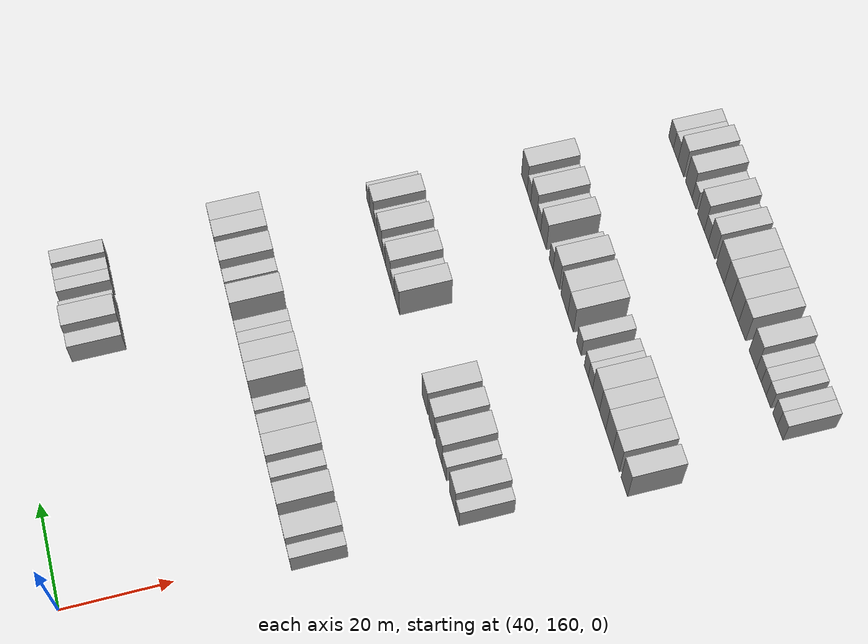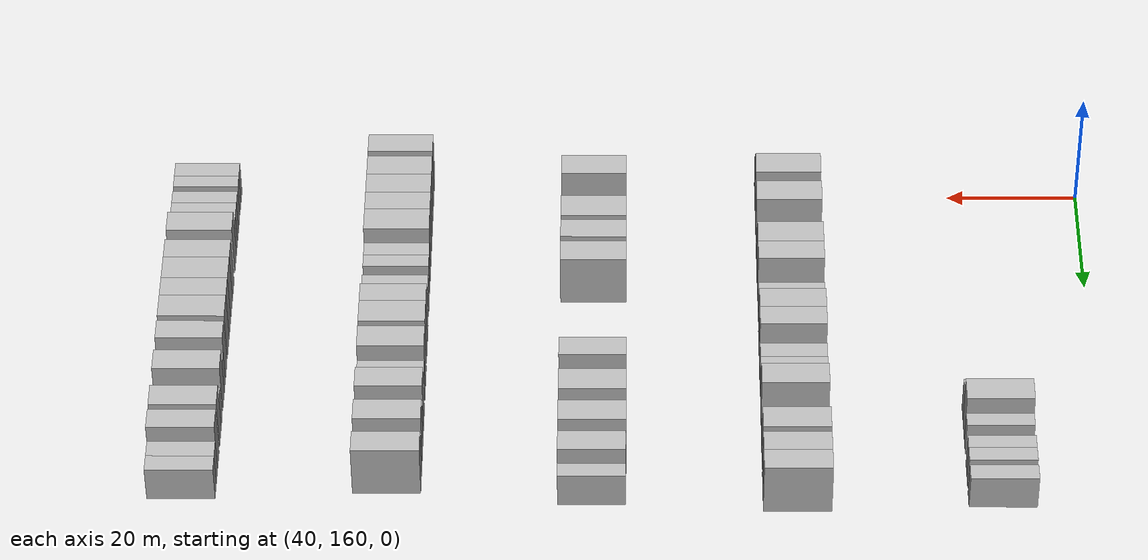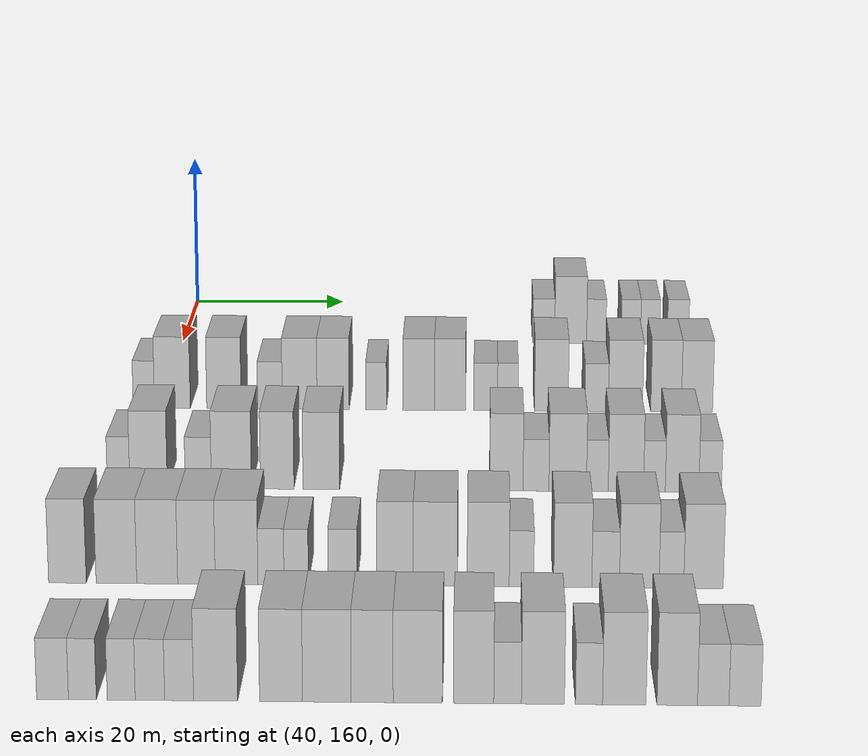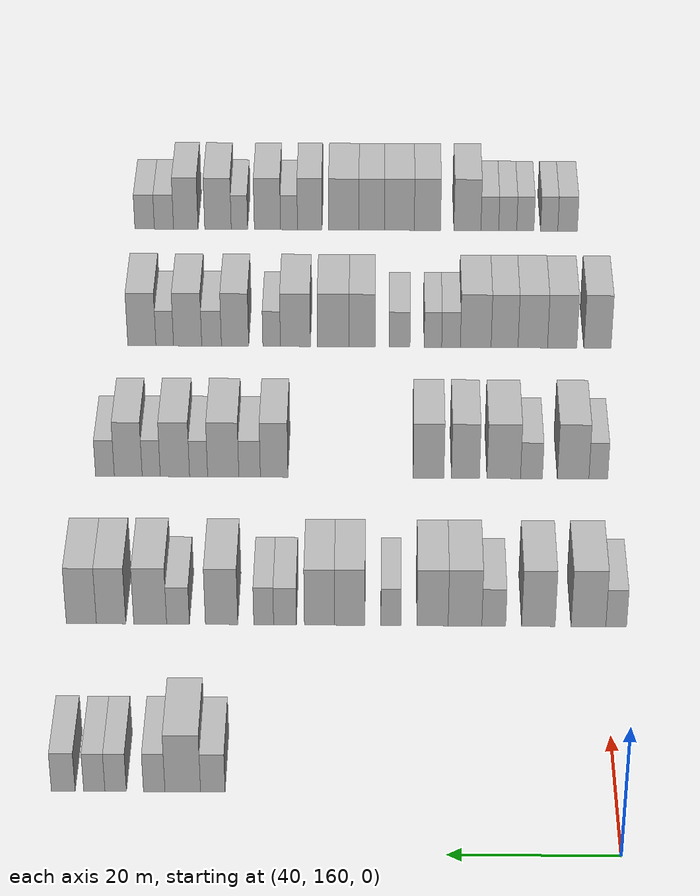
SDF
<sdf version="1.6">
 <world name="default">
  <model name="building_389">
   <static>1</static>
   <pose>55.0000 207.2633 0 0.000000 0.000000 0.000000</pose>
   <link name="link">
    <pose>0 0 3.00 0 0 0</pose>
    <collision name="collision"><geometry><box><size>10.0000 2.8844 6.0000</size></box></geometry></collision>
    <visual name="visual">
     <cast_shadows>0</cast_shadows>
     <geometry><box><size>10.0000 2.8844 6.0000</size></box></geometry>
     <material>
      <script>
       <uri>model://HANNAS_wall/materials/scripts</uri>
       <uri>model://HANNAS_wall/materials/textures</uri>
       <name>vrc/HANNAS_wall</name>
      </script>
     </material>
    </visual>
   </link>
  </model>
  <model name="building_390">
   <static>1</static>
   <pose>55.0000 210.7934 0 0.000000 0.000000 0.000000</pose>
   <link name="link">
    <pose>0 0 4.50 0 0 0</pose>
    <collision name="collision"><geometry><box><size>10.0000 4.1758 9.0000</size></box></geometry></collision>
    <visual name="visual">
     <cast_shadows>0</cast_shadows>
     <geometry><box><size>10.0000 4.1758 9.0000</size></box></geometry>
     <material>
      <script>
       <uri>model://HANNAS_wall/materials/scripts</uri>
       <uri>model://HANNAS_wall/materials/textures</uri>
       <name>vrc/HANNAS_wall</name>
      </script>
     </material>
    </visual>
   </link>
  </model>
  <model name="building_391">
   <static>1</static>
   <pose>55.0000 214.1429 0 0.000000 0.000000 0.000000</pose>
   <link name="link">
    <pose>0 0 3.00 0 0 0</pose>
    <collision name="collision"><geometry><box><size>10.0000 2.5232 6.0000</size></box></geometry></collision>
    <visual name="visual">
     <cast_shadows>0</cast_shadows>
     <geometry><box><size>10.0000 2.5232 6.0000</size></box></geometry>
     <material>
      <script>
       <uri>model://HANNAS_wall/materials/scripts</uri>
       <uri>model://HANNAS_wall/materials/textures</uri>
       <name>vrc/HANNAS_wall</name>
      </script>
     </material>
    </visual>
   </link>
  </model>
  <model name="building_392">
   <static>1</static>
   <pose>55.0000 218.6651 0 0.000000 0.000000 0.000000</pose>
   <link name="link">
    <pose>0 0 3.00 0 0 0</pose>
    <collision name="collision"><geometry><box><size>10.0000 2.5212 6.0000</size></box></geometry></collision>
    <visual name="visual">
     <cast_shadows>0</cast_shadows>
     <geometry><box><size>10.0000 2.5212 6.0000</size></box></geometry>
     <material>
      <script>
       <uri>model://HANNAS_wall/materials/scripts</uri>
       <uri>model://HANNAS_wall/materials/textures</uri>
       <name>vrc/HANNAS_wall</name>
      </script>
     </material>
    </visual>
   </link>
  </model>
  <model name="building_393">
   <static>1</static>
   <pose>55.0000 221.1750 0 0.000000 0.000000 0.000000</pose>
   <link name="link">
    <pose>0 0 3.00 0 0 0</pose>
    <collision name="collision"><geometry><box><size>10.0000 2.4988 6.0000</size></box></geometry></collision>
    <visual name="visual">
     <cast_shadows>0</cast_shadows>
     <geometry><box><size>10.0000 2.4988 6.0000</size></box></geometry>
     <material>
      <script>
       <uri>model://HANNAS_wall/materials/scripts</uri>
       <uri>model://HANNAS_wall/materials/textures</uri>
       <name>vrc/HANNAS_wall</name>
      </script>
     </material>
    </visual>
   </link>
  </model>
  <model name="building_394">
   <static>1</static>
   <pose>55.0000 224.8214 0 0.000000 0.000000 0.000000</pose>
   <link name="link">
    <pose>0 0 3.00 0 0 0</pose>
    <collision name="collision"><geometry><box><size>10.0000 2.7939 6.0000</size></box></geometry></collision>
    <visual name="visual">
     <cast_shadows>0</cast_shadows>
     <geometry><box><size>10.0000 2.7939 6.0000</size></box></geometry>
     <material>
      <script>
       <uri>model://HANNAS_wall/materials/scripts</uri>
       <uri>model://HANNAS_wall/materials/textures</uri>
       <name>vrc/HANNAS_wall</name>
      </script>
     </material>
    </visual>
   </link>
  </model>
  <model name="building_598">
   <static>1</static>
   <pose>85.0000 158.1595 0 0.000000 0.000000 0.000000</pose>
   <link name="link">
    <pose>0 0 3.00 0 0 0</pose>
    <collision name="collision"><geometry><box><size>10.0000 2.5945 6.0000</size></box></geometry></collision>
    <visual name="visual">
     <cast_shadows>0</cast_shadows>
     <geometry><box><size>10.0000 2.5945 6.0000</size></box></geometry>
     <material>
      <script>
       <uri>model://HANNAS_wall/materials/scripts</uri>
       <uri>model://HANNAS_wall/materials/textures</uri>
       <name>vrc/HANNAS_wall</name>
      </script>
     </material>
    </visual>
   </link>
  </model>
  <model name="building_599">
   <static>1</static>
   <pose>85.0000 161.6323 0 0.000000 0.000000 0.000000</pose>
   <link name="link">
    <pose>0 0 4.50 0 0 0</pose>
    <collision name="collision"><geometry><box><size>10.0000 4.3510 9.0000</size></box></geometry></collision>
    <visual name="visual">
     <cast_shadows>0</cast_shadows>
     <geometry><box><size>10.0000 4.3510 9.0000</size></box></geometry>
     <material>
      <script>
       <uri>model://HANNAS_wall/materials/scripts</uri>
       <uri>model://HANNAS_wall/materials/textures</uri>
       <name>vrc/HANNAS_wall</name>
      </script>
     </material>
    </visual>
   </link>
  </model>
  <model name="building_600">
   <static>1</static>
   <pose>85.0000 167.9012 0 0.000000 0.000000 0.000000</pose>
   <link name="link">
    <pose>0 0 4.50 0 0 0</pose>
    <collision name="collision"><geometry><box><size>10.0000 4.1868 9.0000</size></box></geometry></collision>
    <visual name="visual">
     <cast_shadows>0</cast_shadows>
     <geometry><box><size>10.0000 4.1868 9.0000</size></box></geometry>
     <material>
      <script>
       <uri>model://HANNAS_wall/materials/scripts</uri>
       <uri>model://HANNAS_wall/materials/textures</uri>
       <name>vrc/HANNAS_wall</name>
      </script>
     </material>
    </visual>
   </link>
  </model>
  <model name="building_601">
   <static>1</static>
   <pose>85.0000 173.4865 0 0.000000 0.000000 0.000000</pose>
   <link name="link">
    <pose>0 0 3.00 0 0 0</pose>
    <collision name="collision"><geometry><box><size>10.0000 2.9837 6.0000</size></box></geometry></collision>
    <visual name="visual">
     <cast_shadows>0</cast_shadows>
     <geometry><box><size>10.0000 2.9837 6.0000</size></box></geometry>
     <material>
      <script>
       <uri>model://HANNAS_wall/materials/scripts</uri>
       <uri>model://HANNAS_wall/materials/textures</uri>
       <name>vrc/HANNAS_wall</name>
      </script>
     </material>
    </visual>
   </link>
  </model>
  <model name="building_602">
   <static>1</static>
   <pose>85.0000 177.0919 0 0.000000 0.000000 0.000000</pose>
   <link name="link">
    <pose>0 0 4.50 0 0 0</pose>
    <collision name="collision"><geometry><box><size>10.0000 4.2272 9.0000</size></box></geometry></collision>
    <visual name="visual">
     <cast_shadows>0</cast_shadows>
     <geometry><box><size>10.0000 4.2272 9.0000</size></box></geometry>
     <material>
      <script>
       <uri>model://HANNAS_wall/materials/scripts</uri>
       <uri>model://HANNAS_wall/materials/textures</uri>
       <name>vrc/HANNAS_wall</name>
      </script>
     </material>
    </visual>
   </link>
  </model>
  <model name="building_603">
   <static>1</static>
   <pose>85.0000 181.1576 0 0.000000 0.000000 0.000000</pose>
   <link name="link">
    <pose>0 0 4.50 0 0 0</pose>
    <collision name="collision"><geometry><box><size>10.0000 3.9042 9.0000</size></box></geometry></collision>
    <visual name="visual">
     <cast_shadows>0</cast_shadows>
     <geometry><box><size>10.0000 3.9042 9.0000</size></box></geometry>
     <material>
      <script>
       <uri>model://HANNAS_wall/materials/scripts</uri>
       <uri>model://HANNAS_wall/materials/textures</uri>
       <name>vrc/HANNAS_wall</name>
      </script>
     </material>
    </visual>
   </link>
  </model>
  <model name="building_604">
   <static>1</static>
   <pose>85.0000 186.3675 0 0.000000 0.000000 0.000000</pose>
   <link name="link">
    <pose>0 0 3.00 0 0 0</pose>
    <collision name="collision"><geometry><box><size>10.0000 2.5156 6.0000</size></box></geometry></collision>
    <visual name="visual">
     <cast_shadows>0</cast_shadows>
     <geometry><box><size>10.0000 2.5156 6.0000</size></box></geometry>
     <material>
      <script>
       <uri>model://HANNAS_wall/materials/scripts</uri>
       <uri>model://HANNAS_wall/materials/textures</uri>
       <name>vrc/HANNAS_wall</name>
      </script>
     </material>
    </visual>
   </link>
  </model>
  <model name="building_605">
   <static>1</static>
   <pose>85.0000 191.5327 0 0.000000 0.000000 0.000000</pose>
   <link name="link">
    <pose>0 0 4.50 0 0 0</pose>
    <collision name="collision"><geometry><box><size>10.0000 3.8147 9.0000</size></box></geometry></collision>
    <visual name="visual">
     <cast_shadows>0</cast_shadows>
     <geometry><box><size>10.0000 3.8147 9.0000</size></box></geometry>
     <material>
      <script>
       <uri>model://HANNAS_wall/materials/scripts</uri>
       <uri>model://HANNAS_wall/materials/textures</uri>
       <name>vrc/HANNAS_wall</name>
      </script>
     </material>
    </visual>
   </link>
  </model>
  <model name="building_606">
   <static>1</static>
   <pose>85.0000 195.3224 0 0.000000 0.000000 0.000000</pose>
   <link name="link">
    <pose>0 0 4.50 0 0 0</pose>
    <collision name="collision"><geometry><box><size>10.0000 3.7648 9.0000</size></box></geometry></collision>
    <visual name="visual">
     <cast_shadows>0</cast_shadows>
     <geometry><box><size>10.0000 3.7648 9.0000</size></box></geometry>
     <material>
      <script>
       <uri>model://HANNAS_wall/materials/scripts</uri>
       <uri>model://HANNAS_wall/materials/textures</uri>
       <name>vrc/HANNAS_wall</name>
      </script>
     </material>
    </visual>
   </link>
  </model>
  <model name="building_607">
   <static>1</static>
   <pose>85.0000 199.6372 0 0.000000 0.000000 0.000000</pose>
   <link name="link">
    <pose>0 0 3.00 0 0 0</pose>
    <collision name="collision"><geometry><box><size>10.0000 2.8647 6.0000</size></box></geometry></collision>
    <visual name="visual">
     <cast_shadows>0</cast_shadows>
     <geometry><box><size>10.0000 2.8647 6.0000</size></box></geometry>
     <material>
      <script>
       <uri>model://HANNAS_wall/materials/scripts</uri>
       <uri>model://HANNAS_wall/materials/textures</uri>
       <name>vrc/HANNAS_wall</name>
      </script>
     </material>
    </visual>
   </link>
  </model>
  <model name="building_608">
   <static>1</static>
   <pose>85.0000 202.3113 0 0.000000 0.000000 0.000000</pose>
   <link name="link">
    <pose>0 0 3.00 0 0 0</pose>
    <collision name="collision"><geometry><box><size>10.0000 2.4835 6.0000</size></box></geometry></collision>
    <visual name="visual">
     <cast_shadows>0</cast_shadows>
     <geometry><box><size>10.0000 2.4835 6.0000</size></box></geometry>
     <material>
      <script>
       <uri>model://HANNAS_wall/materials/scripts</uri>
       <uri>model://HANNAS_wall/materials/textures</uri>
       <name>vrc/HANNAS_wall</name>
      </script>
     </material>
    </visual>
   </link>
  </model>
  <model name="building_609">
   <static>1</static>
   <pose>85.0000 207.5868 0 0.000000 0.000000 0.000000</pose>
   <link name="link">
    <pose>0 0 4.50 0 0 0</pose>
    <collision name="collision"><geometry><box><size>10.0000 4.0674 9.0000</size></box></geometry></collision>
    <visual name="visual">
     <cast_shadows>0</cast_shadows>
     <geometry><box><size>10.0000 4.0674 9.0000</size></box></geometry>
     <material>
      <script>
       <uri>model://HANNAS_wall/materials/scripts</uri>
       <uri>model://HANNAS_wall/materials/textures</uri>
       <name>vrc/HANNAS_wall</name>
      </script>
     </material>
    </visual>
   </link>
  </model>
  <model name="building_610">
   <static>1</static>
   <pose>85.0000 213.0530 0 0.000000 0.000000 0.000000</pose>
   <link name="link">
    <pose>0 0 3.00 0 0 0</pose>
    <collision name="collision"><geometry><box><size>10.0000 2.8650 6.0000</size></box></geometry></collision>
    <visual name="visual">
     <cast_shadows>0</cast_shadows>
     <geometry><box><size>10.0000 2.8650 6.0000</size></box></geometry>
     <material>
      <script>
       <uri>model://HANNAS_wall/materials/scripts</uri>
       <uri>model://HANNAS_wall/materials/textures</uri>
       <name>vrc/HANNAS_wall</name>
      </script>
     </material>
    </visual>
   </link>
  </model>
  <model name="building_611">
   <static>1</static>
   <pose>85.0000 216.5447 0 0.000000 0.000000 0.000000</pose>
   <link name="link">
    <pose>0 0 4.50 0 0 0</pose>
    <collision name="collision"><geometry><box><size>10.0000 4.1186 9.0000</size></box></geometry></collision>
    <visual name="visual">
     <cast_shadows>0</cast_shadows>
     <geometry><box><size>10.0000 4.1186 9.0000</size></box></geometry>
     <material>
      <script>
       <uri>model://HANNAS_wall/materials/scripts</uri>
       <uri>model://HANNAS_wall/materials/textures</uri>
       <name>vrc/HANNAS_wall</name>
      </script>
     </material>
    </visual>
   </link>
  </model>
  <model name="building_612">
   <static>1</static>
   <pose>85.0000 221.4460 0 0.000000 0.000000 0.000000</pose>
   <link name="link">
    <pose>0 0 4.50 0 0 0</pose>
    <collision name="collision"><geometry><box><size>10.0000 3.6840 9.0000</size></box></geometry></collision>
    <visual name="visual">
     <cast_shadows>0</cast_shadows>
     <geometry><box><size>10.0000 3.6840 9.0000</size></box></geometry>
     <material>
      <script>
       <uri>model://HANNAS_wall/materials/scripts</uri>
       <uri>model://HANNAS_wall/materials/textures</uri>
       <name>vrc/HANNAS_wall</name>
      </script>
     </material>
    </visual>
   </link>
  </model>
  <model name="building_613">
   <static>1</static>
   <pose>85.0000 225.1732 0 0.000000 0.000000 0.000000</pose>
   <link name="link">
    <pose>0 0 4.50 0 0 0</pose>
    <collision name="collision"><geometry><box><size>10.0000 3.7705 9.0000</size></box></geometry></collision>
    <visual name="visual">
     <cast_shadows>0</cast_shadows>
     <geometry><box><size>10.0000 3.7705 9.0000</size></box></geometry>
     <material>
      <script>
       <uri>model://HANNAS_wall/materials/scripts</uri>
       <uri>model://HANNAS_wall/materials/textures</uri>
       <name>vrc/HANNAS_wall</name>
      </script>
     </material>
    </visual>
   </link>
  </model>
  <model name="building_832">
   <static>1</static>
   <pose>115.0000 158.7366 0 0.000000 0.000000 0.000000</pose>
   <link name="link">
    <pose>0 0 3.00 0 0 0</pose>
    <collision name="collision"><geometry><box><size>10.0000 2.5048 6.0000</size></box></geometry></collision>
    <visual name="visual">
     <cast_shadows>0</cast_shadows>
     <geometry><box><size>10.0000 2.5048 6.0000</size></box></geometry>
     <material>
      <script>
       <uri>model://HANNAS_wall/materials/scripts</uri>
       <uri>model://HANNAS_wall/materials/textures</uri>
       <name>vrc/HANNAS_wall</name>
      </script>
     </material>
    </visual>
   </link>
  </model>
  <model name="building_833">
   <static>1</static>
   <pose>115.0000 162.0836 0 0.000000 0.000000 0.000000</pose>
   <link name="link">
    <pose>0 0 4.50 0 0 0</pose>
    <collision name="collision"><geometry><box><size>10.0000 4.1893 9.0000</size></box></geometry></collision>
    <visual name="visual">
     <cast_shadows>0</cast_shadows>
     <geometry><box><size>10.0000 4.1893 9.0000</size></box></geometry>
     <material>
      <script>
       <uri>model://HANNAS_wall/materials/scripts</uri>
       <uri>model://HANNAS_wall/materials/textures</uri>
       <name>vrc/HANNAS_wall</name>
      </script>
     </material>
    </visual>
   </link>
  </model>
  <model name="building_834">
   <static>1</static>
   <pose>115.0000 167.6364 0 0.000000 0.000000 0.000000</pose>
   <link name="link">
    <pose>0 0 3.00 0 0 0</pose>
    <collision name="collision"><geometry><box><size>10.0000 2.9162 6.0000</size></box></geometry></collision>
    <visual name="visual">
     <cast_shadows>0</cast_shadows>
     <geometry><box><size>10.0000 2.9162 6.0000</size></box></geometry>
     <material>
      <script>
       <uri>model://HANNAS_wall/materials/scripts</uri>
       <uri>model://HANNAS_wall/materials/textures</uri>
       <name>vrc/HANNAS_wall</name>
      </script>
     </material>
    </visual>
   </link>
  </model>
  <model name="building_835">
   <static>1</static>
   <pose>115.0000 171.3283 0 0.000000 0.000000 0.000000</pose>
   <link name="link">
    <pose>0 0 4.50 0 0 0</pose>
    <collision name="collision"><geometry><box><size>10.0000 4.4678 9.0000</size></box></geometry></collision>
    <visual name="visual">
     <cast_shadows>0</cast_shadows>
     <geometry><box><size>10.0000 4.4678 9.0000</size></box></geometry>
     <material>
      <script>
       <uri>model://HANNAS_wall/materials/scripts</uri>
       <uri>model://HANNAS_wall/materials/textures</uri>
       <name>vrc/HANNAS_wall</name>
      </script>
     </material>
    </visual>
   </link>
  </model>
  <model name="building_836">
   <static>1</static>
   <pose>115.0000 176.4306 0 0.000000 0.000000 0.000000</pose>
   <link name="link">
    <pose>0 0 4.50 0 0 0</pose>
    <collision name="collision"><geometry><box><size>10.0000 3.7369 9.0000</size></box></geometry></collision>
    <visual name="visual">
     <cast_shadows>0</cast_shadows>
     <geometry><box><size>10.0000 3.7369 9.0000</size></box></geometry>
     <material>
      <script>
       <uri>model://HANNAS_wall/materials/scripts</uri>
       <uri>model://HANNAS_wall/materials/textures</uri>
       <name>vrc/HANNAS_wall</name>
      </script>
     </material>
    </visual>
   </link>
  </model>
  <model name="building_837">
   <static>1</static>
   <pose>115.0000 181.3474 0 0.000000 0.000000 0.000000</pose>
   <link name="link">
    <pose>0 0 4.50 0 0 0</pose>
    <collision name="collision"><geometry><box><size>10.0000 4.0966 9.0000</size></box></geometry></collision>
    <visual name="visual">
     <cast_shadows>0</cast_shadows>
     <geometry><box><size>10.0000 4.0966 9.0000</size></box></geometry>
     <material>
      <script>
       <uri>model://HANNAS_wall/materials/scripts</uri>
       <uri>model://HANNAS_wall/materials/textures</uri>
       <name>vrc/HANNAS_wall</name>
      </script>
     </material>
    </visual>
   </link>
  </model>
  <model name="building_838">
   <static>1</static>
   <pose>115.0000 201.9270 0 0.000000 0.000000 0.000000</pose>
   <link name="link">
    <pose>0 0 4.50 0 0 0</pose>
    <collision name="collision"><geometry><box><size>10.0000 3.6876 9.0000</size></box></geometry></collision>
    <visual name="visual">
     <cast_shadows>0</cast_shadows>
     <geometry><box><size>10.0000 3.6876 9.0000</size></box></geometry>
     <material>
      <script>
       <uri>model://HANNAS_wall/materials/scripts</uri>
       <uri>model://HANNAS_wall/materials/textures</uri>
       <name>vrc/HANNAS_wall</name>
      </script>
     </material>
    </visual>
   </link>
  </model>
  <model name="building_839">
   <static>1</static>
   <pose>115.0000 205.2088 0 0.000000 0.000000 0.000000</pose>
   <link name="link">
    <pose>0 0 3.00 0 0 0</pose>
    <collision name="collision"><geometry><box><size>10.0000 2.8760 6.0000</size></box></geometry></collision>
    <visual name="visual">
     <cast_shadows>0</cast_shadows>
     <geometry><box><size>10.0000 2.8760 6.0000</size></box></geometry>
     <material>
      <script>
       <uri>model://HANNAS_wall/materials/scripts</uri>
       <uri>model://HANNAS_wall/materials/textures</uri>
       <name>vrc/HANNAS_wall</name>
      </script>
     </material>
    </visual>
   </link>
  </model>
  <model name="building_840">
   <static>1</static>
   <pose>115.0000 208.7271 0 0.000000 0.000000 0.000000</pose>
   <link name="link">
    <pose>0 0 4.50 0 0 0</pose>
    <collision name="collision"><geometry><box><size>10.0000 4.1606 9.0000</size></box></geometry></collision>
    <visual name="visual">
     <cast_shadows>0</cast_shadows>
     <geometry><box><size>10.0000 4.1606 9.0000</size></box></geometry>
     <material>
      <script>
       <uri>model://HANNAS_wall/materials/scripts</uri>
       <uri>model://HANNAS_wall/materials/textures</uri>
       <name>vrc/HANNAS_wall</name>
      </script>
     </material>
    </visual>
   </link>
  </model>
  <model name="building_841">
   <static>1</static>
   <pose>115.0000 212.0136 0 0.000000 0.000000 0.000000</pose>
   <link name="link">
    <pose>0 0 3.00 0 0 0</pose>
    <collision name="collision"><geometry><box><size>10.0000 2.4125 6.0000</size></box></geometry></collision>
    <visual name="visual">
     <cast_shadows>0</cast_shadows>
     <geometry><box><size>10.0000 2.4125 6.0000</size></box></geometry>
     <material>
      <script>
       <uri>model://HANNAS_wall/materials/scripts</uri>
       <uri>model://HANNAS_wall/materials/textures</uri>
       <name>vrc/HANNAS_wall</name>
      </script>
     </material>
    </visual>
   </link>
  </model>
  <model name="building_842">
   <static>1</static>
   <pose>115.0000 215.1717 0 0.000000 0.000000 0.000000</pose>
   <link name="link">
    <pose>0 0 4.50 0 0 0</pose>
    <collision name="collision"><geometry><box><size>10.0000 3.9037 9.0000</size></box></geometry></collision>
    <visual name="visual">
     <cast_shadows>0</cast_shadows>
     <geometry><box><size>10.0000 3.9037 9.0000</size></box></geometry>
     <material>
      <script>
       <uri>model://HANNAS_wall/materials/scripts</uri>
       <uri>model://HANNAS_wall/materials/textures</uri>
       <name>vrc/HANNAS_wall</name>
      </script>
     </material>
    </visual>
   </link>
  </model>
  <model name="building_843">
   <static>1</static>
   <pose>115.0000 218.3310 0 0.000000 0.000000 0.000000</pose>
   <link name="link">
    <pose>0 0 3.00 0 0 0</pose>
    <collision name="collision"><geometry><box><size>10.0000 2.4149 6.0000</size></box></geometry></collision>
    <visual name="visual">
     <cast_shadows>0</cast_shadows>
     <geometry><box><size>10.0000 2.4149 6.0000</size></box></geometry>
     <material>
      <script>
       <uri>model://HANNAS_wall/materials/scripts</uri>
       <uri>model://HANNAS_wall/materials/textures</uri>
       <name>vrc/HANNAS_wall</name>
      </script>
     </material>
    </visual>
   </link>
  </model>
  <model name="building_844">
   <static>1</static>
   <pose>115.0000 221.3978 0 0.000000 0.000000 0.000000</pose>
   <link name="link">
    <pose>0 0 4.50 0 0 0</pose>
    <collision name="collision"><geometry><box><size>10.0000 3.7187 9.0000</size></box></geometry></collision>
    <visual name="visual">
     <cast_shadows>0</cast_shadows>
     <geometry><box><size>10.0000 3.7187 9.0000</size></box></geometry>
     <material>
      <script>
       <uri>model://HANNAS_wall/materials/scripts</uri>
       <uri>model://HANNAS_wall/materials/textures</uri>
       <name>vrc/HANNAS_wall</name>
      </script>
     </material>
    </visual>
   </link>
  </model>
  <model name="building_845">
   <static>1</static>
   <pose>115.0000 224.5075 0 0.000000 0.000000 0.000000</pose>
   <link name="link">
    <pose>0 0 3.00 0 0 0</pose>
    <collision name="collision"><geometry><box><size>10.0000 2.5007 6.0000</size></box></geometry></collision>
    <visual name="visual">
     <cast_shadows>0</cast_shadows>
     <geometry><box><size>10.0000 2.5007 6.0000</size></box></geometry>
     <material>
      <script>
       <uri>model://HANNAS_wall/materials/scripts</uri>
       <uri>model://HANNAS_wall/materials/textures</uri>
       <name>vrc/HANNAS_wall</name>
      </script>
     </material>
    </visual>
   </link>
  </model>
  <model name="building_1058">
   <static>1</static>
   <pose>145.0000 157.1899 0 0.000000 0.000000 0.000000</pose>
   <link name="link">
    <pose>0 0 4.50 0 0 0</pose>
    <collision name="collision"><geometry><box><size>10.0000 3.8267 9.0000</size></box></geometry></collision>
    <visual name="visual">
     <cast_shadows>0</cast_shadows>
     <geometry><box><size>10.0000 3.8267 9.0000</size></box></geometry>
     <material>
      <script>
       <uri>model://HANNAS_wall/materials/scripts</uri>
       <uri>model://HANNAS_wall/materials/textures</uri>
       <name>vrc/HANNAS_wall</name>
      </script>
     </material>
    </visual>
   </link>
  </model>
  <model name="building_1059">
   <static>1</static>
   <pose>145.0000 162.1706 0 0.000000 0.000000 0.000000</pose>
   <link name="link">
    <pose>0 0 4.50 0 0 0</pose>
    <collision name="collision"><geometry><box><size>10.0000 4.1347 9.0000</size></box></geometry></collision>
    <visual name="visual">
     <cast_shadows>0</cast_shadows>
     <geometry><box><size>10.0000 4.1347 9.0000</size></box></geometry>
     <material>
      <script>
       <uri>model://HANNAS_wall/materials/scripts</uri>
       <uri>model://HANNAS_wall/materials/textures</uri>
       <name>vrc/HANNAS_wall</name>
      </script>
     </material>
    </visual>
   </link>
  </model>
  <model name="building_1060">
   <static>1</static>
   <pose>145.0000 166.3203 0 0.000000 0.000000 0.000000</pose>
   <link name="link">
    <pose>0 0 4.50 0 0 0</pose>
    <collision name="collision"><geometry><box><size>10.0000 4.1646 9.0000</size></box></geometry></collision>
    <visual name="visual">
     <cast_shadows>0</cast_shadows>
     <geometry><box><size>10.0000 4.1646 9.0000</size></box></geometry>
     <material>
      <script>
       <uri>model://HANNAS_wall/materials/scripts</uri>
       <uri>model://HANNAS_wall/materials/textures</uri>
       <name>vrc/HANNAS_wall</name>
      </script>
     </material>
    </visual>
   </link>
  </model>
  <model name="building_1061">
   <static>1</static>
   <pose>145.0000 170.3066 0 0.000000 0.000000 0.000000</pose>
   <link name="link">
    <pose>0 0 4.50 0 0 0</pose>
    <collision name="collision"><geometry><box><size>10.0000 3.8079 9.0000</size></box></geometry></collision>
    <visual name="visual">
     <cast_shadows>0</cast_shadows>
     <geometry><box><size>10.0000 3.8079 9.0000</size></box></geometry>
     <material>
      <script>
       <uri>model://HANNAS_wall/materials/scripts</uri>
       <uri>model://HANNAS_wall/materials/textures</uri>
       <name>vrc/HANNAS_wall</name>
      </script>
     </material>
    </visual>
   </link>
  </model>
  <model name="building_1062">
   <static>1</static>
   <pose>145.0000 174.3798 0 0.000000 0.000000 0.000000</pose>
   <link name="link">
    <pose>0 0 4.50 0 0 0</pose>
    <collision name="collision"><geometry><box><size>10.0000 4.3385 9.0000</size></box></geometry></collision>
    <visual name="visual">
     <cast_shadows>0</cast_shadows>
     <geometry><box><size>10.0000 4.3385 9.0000</size></box></geometry>
     <material>
      <script>
       <uri>model://HANNAS_wall/materials/scripts</uri>
       <uri>model://HANNAS_wall/materials/textures</uri>
       <name>vrc/HANNAS_wall</name>
      </script>
     </material>
    </visual>
   </link>
  </model>
  <model name="building_1063">
   <static>1</static>
   <pose>145.0000 177.8678 0 0.000000 0.000000 0.000000</pose>
   <link name="link">
    <pose>0 0 3.00 0 0 0</pose>
    <collision name="collision"><geometry><box><size>10.0000 2.6375 6.0000</size></box></geometry></collision>
    <visual name="visual">
     <cast_shadows>0</cast_shadows>
     <geometry><box><size>10.0000 2.6375 6.0000</size></box></geometry>
     <material>
      <script>
       <uri>model://HANNAS_wall/materials/scripts</uri>
       <uri>model://HANNAS_wall/materials/textures</uri>
       <name>vrc/HANNAS_wall</name>
      </script>
     </material>
    </visual>
   </link>
  </model>
  <model name="building_1064">
   <static>1</static>
   <pose>145.0000 180.4238 0 0.000000 0.000000 0.000000</pose>
   <link name="link">
    <pose>0 0 3.00 0 0 0</pose>
    <collision name="collision"><geometry><box><size>10.0000 2.4744 6.0000</size></box></geometry></collision>
    <visual name="visual">
     <cast_shadows>0</cast_shadows>
     <geometry><box><size>10.0000 2.4744 6.0000</size></box></geometry>
     <material>
      <script>
       <uri>model://HANNAS_wall/materials/scripts</uri>
       <uri>model://HANNAS_wall/materials/textures</uri>
       <name>vrc/HANNAS_wall</name>
      </script>
     </material>
    </visual>
   </link>
  </model>
  <model name="building_1065">
   <static>1</static>
   <pose>145.0000 185.1292 0 0.000000 0.000000 0.000000</pose>
   <link name="link">
    <pose>0 0 3.00 0 0 0</pose>
    <collision name="collision"><geometry><box><size>10.0000 2.9365 6.0000</size></box></geometry></collision>
    <visual name="visual">
     <cast_shadows>0</cast_shadows>
     <geometry><box><size>10.0000 2.9365 6.0000</size></box></geometry>
     <material>
      <script>
       <uri>model://HANNAS_wall/materials/scripts</uri>
       <uri>model://HANNAS_wall/materials/textures</uri>
       <name>vrc/HANNAS_wall</name>
      </script>
     </material>
    </visual>
   </link>
  </model>
  <model name="building_1066">
   <static>1</static>
   <pose>145.0000 190.4345 0 0.000000 0.000000 0.000000</pose>
   <link name="link">
    <pose>0 0 4.50 0 0 0</pose>
    <collision name="collision"><geometry><box><size>10.0000 3.6742 9.0000</size></box></geometry></collision>
    <visual name="visual">
     <cast_shadows>0</cast_shadows>
     <geometry><box><size>10.0000 3.6742 9.0000</size></box></geometry>
     <material>
      <script>
       <uri>model://HANNAS_wall/materials/scripts</uri>
       <uri>model://HANNAS_wall/materials/textures</uri>
       <name>vrc/HANNAS_wall</name>
      </script>
     </material>
    </visual>
   </link>
  </model>
  <model name="building_1067">
   <static>1</static>
   <pose>145.0000 194.5003 0 0.000000 0.000000 0.000000</pose>
   <link name="link">
    <pose>0 0 4.50 0 0 0</pose>
    <collision name="collision"><geometry><box><size>10.0000 4.4573 9.0000</size></box></geometry></collision>
    <visual name="visual">
     <cast_shadows>0</cast_shadows>
     <geometry><box><size>10.0000 4.4573 9.0000</size></box></geometry>
     <material>
      <script>
       <uri>model://HANNAS_wall/materials/scripts</uri>
       <uri>model://HANNAS_wall/materials/textures</uri>
       <name>vrc/HANNAS_wall</name>
      </script>
     </material>
    </visual>
   </link>
  </model>
  <model name="building_1068">
   <static>1</static>
   <pose>145.0000 199.8545 0 0.000000 0.000000 0.000000</pose>
   <link name="link">
    <pose>0 0 4.50 0 0 0</pose>
    <collision name="collision"><geometry><box><size>10.0000 4.2512 9.0000</size></box></geometry></collision>
    <visual name="visual">
     <cast_shadows>0</cast_shadows>
     <geometry><box><size>10.0000 4.2512 9.0000</size></box></geometry>
     <material>
      <script>
       <uri>model://HANNAS_wall/materials/scripts</uri>
       <uri>model://HANNAS_wall/materials/textures</uri>
       <name>vrc/HANNAS_wall</name>
      </script>
     </material>
    </visual>
   </link>
  </model>
  <model name="building_1069">
   <static>1</static>
   <pose>145.0000 203.2214 0 0.000000 0.000000 0.000000</pose>
   <link name="link">
    <pose>0 0 3.00 0 0 0</pose>
    <collision name="collision"><geometry><box><size>10.0000 2.4826 6.0000</size></box></geometry></collision>
    <visual name="visual">
     <cast_shadows>0</cast_shadows>
     <geometry><box><size>10.0000 2.4826 6.0000</size></box></geometry>
     <material>
      <script>
       <uri>model://HANNAS_wall/materials/scripts</uri>
       <uri>model://HANNAS_wall/materials/textures</uri>
       <name>vrc/HANNAS_wall</name>
      </script>
     </material>
    </visual>
   </link>
  </model>
  <model name="building_1070">
   <static>1</static>
   <pose>145.0000 208.3929 0 0.000000 0.000000 0.000000</pose>
   <link name="link">
    <pose>0 0 4.50 0 0 0</pose>
    <collision name="collision"><geometry><box><size>10.0000 3.8604 9.0000</size></box></geometry></collision>
    <visual name="visual">
     <cast_shadows>0</cast_shadows>
     <geometry><box><size>10.0000 3.8604 9.0000</size></box></geometry>
     <material>
      <script>
       <uri>model://HANNAS_wall/materials/scripts</uri>
       <uri>model://HANNAS_wall/materials/textures</uri>
       <name>vrc/HANNAS_wall</name>
      </script>
     </material>
    </visual>
   </link>
  </model>
  <model name="building_1071">
   <static>1</static>
   <pose>145.0000 211.7156 0 0.000000 0.000000 0.000000</pose>
   <link name="link">
    <pose>0 0 3.00 0 0 0</pose>
    <collision name="collision"><geometry><box><size>10.0000 2.7851 6.0000</size></box></geometry></collision>
    <visual name="visual">
     <cast_shadows>0</cast_shadows>
     <geometry><box><size>10.0000 2.7851 6.0000</size></box></geometry>
     <material>
      <script>
       <uri>model://HANNAS_wall/materials/scripts</uri>
       <uri>model://HANNAS_wall/materials/textures</uri>
       <name>vrc/HANNAS_wall</name>
      </script>
     </material>
    </visual>
   </link>
  </model>
  <model name="building_1072">
   <static>1</static>
   <pose>145.0000 215.1014 0 0.000000 0.000000 0.000000</pose>
   <link name="link">
    <pose>0 0 4.50 0 0 0</pose>
    <collision name="collision"><geometry><box><size>10.0000 3.9864 9.0000</size></box></geometry></collision>
    <visual name="visual">
     <cast_shadows>0</cast_shadows>
     <geometry><box><size>10.0000 3.9864 9.0000</size></box></geometry>
     <material>
      <script>
       <uri>model://HANNAS_wall/materials/scripts</uri>
       <uri>model://HANNAS_wall/materials/textures</uri>
       <name>vrc/HANNAS_wall</name>
      </script>
     </material>
    </visual>
   </link>
  </model>
  <model name="building_1073">
   <static>1</static>
   <pose>145.0000 218.3425 0 0.000000 0.000000 0.000000</pose>
   <link name="link">
    <pose>0 0 3.00 0 0 0</pose>
    <collision name="collision"><geometry><box><size>10.0000 2.4957 6.0000</size></box></geometry></collision>
    <visual name="visual">
     <cast_shadows>0</cast_shadows>
     <geometry><box><size>10.0000 2.4957 6.0000</size></box></geometry>
     <material>
      <script>
       <uri>model://HANNAS_wall/materials/scripts</uri>
       <uri>model://HANNAS_wall/materials/textures</uri>
       <name>vrc/HANNAS_wall</name>
      </script>
     </material>
    </visual>
   </link>
  </model>
  <model name="building_1074">
   <static>1</static>
   <pose>145.0000 221.5745 0 0.000000 0.000000 0.000000</pose>
   <link name="link">
    <pose>0 0 4.50 0 0 0</pose>
    <collision name="collision"><geometry><box><size>10.0000 3.9682 9.0000</size></box></geometry></collision>
    <visual name="visual">
     <cast_shadows>0</cast_shadows>
     <geometry><box><size>10.0000 3.9682 9.0000</size></box></geometry>
     <material>
      <script>
       <uri>model://HANNAS_wall/materials/scripts</uri>
       <uri>model://HANNAS_wall/materials/textures</uri>
       <name>vrc/HANNAS_wall</name>
      </script>
     </material>
    </visual>
   </link>
  </model>
  <model name="building_1282">
   <static>1</static>
   <pose>175.0000 159.9938 0 0.000000 0.000000 0.000000</pose>
   <link name="link">
    <pose>0 0 3.00 0 0 0</pose>
    <collision name="collision"><geometry><box><size>10.0000 2.9167 6.0000</size></box></geometry></collision>
    <visual name="visual">
     <cast_shadows>0</cast_shadows>
     <geometry><box><size>10.0000 2.9167 6.0000</size></box></geometry>
     <material>
      <script>
       <uri>model://HANNAS_wall/materials/scripts</uri>
       <uri>model://HANNAS_wall/materials/textures</uri>
       <name>vrc/HANNAS_wall</name>
      </script>
     </material>
    </visual>
   </link>
  </model>
  <model name="building_1283">
   <static>1</static>
   <pose>175.0000 162.7302 0 0.000000 0.000000 0.000000</pose>
   <link name="link">
    <pose>0 0 3.00 0 0 0</pose>
    <collision name="collision"><geometry><box><size>10.0000 2.5560 6.0000</size></box></geometry></collision>
    <visual name="visual">
     <cast_shadows>0</cast_shadows>
     <geometry><box><size>10.0000 2.5560 6.0000</size></box></geometry>
     <material>
      <script>
       <uri>model://HANNAS_wall/materials/scripts</uri>
       <uri>model://HANNAS_wall/materials/textures</uri>
       <name>vrc/HANNAS_wall</name>
      </script>
     </material>
    </visual>
   </link>
  </model>
  <model name="building_1284">
   <static>1</static>
   <pose>175.0000 166.2914 0 0.000000 0.000000 0.000000</pose>
   <link name="link">
    <pose>0 0 3.00 0 0 0</pose>
    <collision name="collision"><geometry><box><size>10.0000 2.5665 6.0000</size></box></geometry></collision>
    <visual name="visual">
     <cast_shadows>0</cast_shadows>
     <geometry><box><size>10.0000 2.5665 6.0000</size></box></geometry>
     <material>
      <script>
       <uri>model://HANNAS_wall/materials/scripts</uri>
       <uri>model://HANNAS_wall/materials/textures</uri>
       <name>vrc/HANNAS_wall</name>
      </script>
     </material>
    </visual>
   </link>
  </model>
  <model name="building_1285">
   <static>1</static>
   <pose>175.0000 168.9223 0 0.000000 0.000000 0.000000</pose>
   <link name="link">
    <pose>0 0 3.00 0 0 0</pose>
    <collision name="collision"><geometry><box><size>10.0000 2.6953 6.0000</size></box></geometry></collision>
    <visual name="visual">
     <cast_shadows>0</cast_shadows>
     <geometry><box><size>10.0000 2.6953 6.0000</size></box></geometry>
     <material>
      <script>
       <uri>model://HANNAS_wall/materials/scripts</uri>
       <uri>model://HANNAS_wall/materials/textures</uri>
       <name>vrc/HANNAS_wall</name>
      </script>
     </material>
    </visual>
   </link>
  </model>
  <model name="building_1286">
   <static>1</static>
   <pose>175.0000 171.5962 0 0.000000 0.000000 0.000000</pose>
   <link name="link">
    <pose>0 0 3.00 0 0 0</pose>
    <collision name="collision"><geometry><box><size>10.0000 2.6524 6.0000</size></box></geometry></collision>
    <visual name="visual">
     <cast_shadows>0</cast_shadows>
     <geometry><box><size>10.0000 2.6524 6.0000</size></box></geometry>
     <material>
      <script>
       <uri>model://HANNAS_wall/materials/scripts</uri>
       <uri>model://HANNAS_wall/materials/textures</uri>
       <name>vrc/HANNAS_wall</name>
      </script>
     </material>
    </visual>
   </link>
  </model>
  <model name="building_1287">
   <static>1</static>
   <pose>175.0000 174.9378 0 0.000000 0.000000 0.000000</pose>
   <link name="link">
    <pose>0 0 4.50 0 0 0</pose>
    <collision name="collision"><geometry><box><size>10.0000 4.0309 9.0000</size></box></geometry></collision>
    <visual name="visual">
     <cast_shadows>0</cast_shadows>
     <geometry><box><size>10.0000 4.0309 9.0000</size></box></geometry>
     <material>
      <script>
       <uri>model://HANNAS_wall/materials/scripts</uri>
       <uri>model://HANNAS_wall/materials/textures</uri>
       <name>vrc/HANNAS_wall</name>
      </script>
     </material>
    </visual>
   </link>
  </model>
  <model name="building_1288">
   <static>1</static>
   <pose>175.0000 180.9147 0 0.000000 0.000000 0.000000</pose>
   <link name="link">
    <pose>0 0 4.50 0 0 0</pose>
    <collision name="collision"><geometry><box><size>10.0000 3.9228 9.0000</size></box></geometry></collision>
    <visual name="visual">
     <cast_shadows>0</cast_shadows>
     <geometry><box><size>10.0000 3.9228 9.0000</size></box></geometry>
     <material>
      <script>
       <uri>model://HANNAS_wall/materials/scripts</uri>
       <uri>model://HANNAS_wall/materials/textures</uri>
       <name>vrc/HANNAS_wall</name>
      </script>
     </material>
    </visual>
   </link>
  </model>
  <model name="building_1289">
   <static>1</static>
   <pose>175.0000 185.0968 0 0.000000 0.000000 0.000000</pose>
   <link name="link">
    <pose>0 0 4.50 0 0 0</pose>
    <collision name="collision"><geometry><box><size>10.0000 4.4413 9.0000</size></box></geometry></collision>
    <visual name="visual">
     <cast_shadows>0</cast_shadows>
     <geometry><box><size>10.0000 4.4413 9.0000</size></box></geometry>
     <material>
      <script>
       <uri>model://HANNAS_wall/materials/scripts</uri>
       <uri>model://HANNAS_wall/materials/textures</uri>
       <name>vrc/HANNAS_wall</name>
      </script>
     </material>
    </visual>
   </link>
  </model>
  <model name="building_1290">
   <static>1</static>
   <pose>175.0000 189.2320 0 0.000000 0.000000 0.000000</pose>
   <link name="link">
    <pose>0 0 4.50 0 0 0</pose>
    <collision name="collision"><geometry><box><size>10.0000 3.8290 9.0000</size></box></geometry></collision>
    <visual name="visual">
     <cast_shadows>0</cast_shadows>
     <geometry><box><size>10.0000 3.8290 9.0000</size></box></geometry>
     <material>
      <script>
       <uri>model://HANNAS_wall/materials/scripts</uri>
       <uri>model://HANNAS_wall/materials/textures</uri>
       <name>vrc/HANNAS_wall</name>
      </script>
     </material>
    </visual>
   </link>
  </model>
  <model name="building_1291">
   <static>1</static>
   <pose>175.0000 193.3929 0 0.000000 0.000000 0.000000</pose>
   <link name="link">
    <pose>0 0 4.50 0 0 0</pose>
    <collision name="collision"><geometry><box><size>10.0000 4.4929 9.0000</size></box></geometry></collision>
    <visual name="visual">
     <cast_shadows>0</cast_shadows>
     <geometry><box><size>10.0000 4.4929 9.0000</size></box></geometry>
     <material>
      <script>
       <uri>model://HANNAS_wall/materials/scripts</uri>
       <uri>model://HANNAS_wall/materials/textures</uri>
       <name>vrc/HANNAS_wall</name>
      </script>
     </material>
    </visual>
   </link>
  </model>
  <model name="building_1292">
   <static>1</static>
   <pose>175.0000 198.4773 0 0.000000 0.000000 0.000000</pose>
   <link name="link">
    <pose>0 0 4.50 0 0 0</pose>
    <collision name="collision"><geometry><box><size>10.0000 3.6759 9.0000</size></box></geometry></collision>
    <visual name="visual">
     <cast_shadows>0</cast_shadows>
     <geometry><box><size>10.0000 3.6759 9.0000</size></box></geometry>
     <material>
      <script>
       <uri>model://HANNAS_wall/materials/scripts</uri>
       <uri>model://HANNAS_wall/materials/textures</uri>
       <name>vrc/HANNAS_wall</name>
      </script>
     </material>
    </visual>
   </link>
  </model>
  <model name="building_1293">
   <static>1</static>
   <pose>175.0000 201.5760 0 0.000000 0.000000 0.000000</pose>
   <link name="link">
    <pose>0 0 3.00 0 0 0</pose>
    <collision name="collision"><geometry><box><size>10.0000 2.5213 6.0000</size></box></geometry></collision>
    <visual name="visual">
     <cast_shadows>0</cast_shadows>
     <geometry><box><size>10.0000 2.5213 6.0000</size></box></geometry>
     <material>
      <script>
       <uri>model://HANNAS_wall/materials/scripts</uri>
       <uri>model://HANNAS_wall/materials/textures</uri>
       <name>vrc/HANNAS_wall</name>
      </script>
     </material>
    </visual>
   </link>
  </model>
  <model name="building_1294">
   <static>1</static>
   <pose>175.0000 204.7942 0 0.000000 0.000000 0.000000</pose>
   <link name="link">
    <pose>0 0 4.50 0 0 0</pose>
    <collision name="collision"><geometry><box><size>10.0000 3.9152 9.0000</size></box></geometry></collision>
    <visual name="visual">
     <cast_shadows>0</cast_shadows>
     <geometry><box><size>10.0000 3.9152 9.0000</size></box></geometry>
     <material>
      <script>
       <uri>model://HANNAS_wall/materials/scripts</uri>
       <uri>model://HANNAS_wall/materials/textures</uri>
       <name>vrc/HANNAS_wall</name>
      </script>
     </material>
    </visual>
   </link>
  </model>
  <model name="building_1295">
   <static>1</static>
   <pose>175.0000 208.9809 0 0.000000 0.000000 0.000000</pose>
   <link name="link">
    <pose>0 0 3.00 0 0 0</pose>
    <collision name="collision"><geometry><box><size>10.0000 2.4581 6.0000</size></box></geometry></collision>
    <visual name="visual">
     <cast_shadows>0</cast_shadows>
     <geometry><box><size>10.0000 2.4581 6.0000</size></box></geometry>
     <material>
      <script>
       <uri>model://HANNAS_wall/materials/scripts</uri>
       <uri>model://HANNAS_wall/materials/textures</uri>
       <name>vrc/HANNAS_wall</name>
      </script>
     </material>
    </visual>
   </link>
  </model>
  <model name="building_1296">
   <static>1</static>
   <pose>175.0000 212.1888 0 0.000000 0.000000 0.000000</pose>
   <link name="link">
    <pose>0 0 4.50 0 0 0</pose>
    <collision name="collision"><geometry><box><size>10.0000 3.9577 9.0000</size></box></geometry></collision>
    <visual name="visual">
     <cast_shadows>0</cast_shadows>
     <geometry><box><size>10.0000 3.9577 9.0000</size></box></geometry>
     <material>
      <script>
       <uri>model://HANNAS_wall/materials/scripts</uri>
       <uri>model://HANNAS_wall/materials/textures</uri>
       <name>vrc/HANNAS_wall</name>
      </script>
     </material>
    </visual>
   </link>
  </model>
  <model name="building_1297">
   <static>1</static>
   <pose>175.0000 217.0024 0 0.000000 0.000000 0.000000</pose>
   <link name="link">
    <pose>0 0 4.50 0 0 0</pose>
    <collision name="collision"><geometry><box><size>10.0000 3.6695 9.0000</size></box></geometry></collision>
    <visual name="visual">
     <cast_shadows>0</cast_shadows>
     <geometry><box><size>10.0000 3.6695 9.0000</size></box></geometry>
     <material>
      <script>
       <uri>model://HANNAS_wall/materials/scripts</uri>
       <uri>model://HANNAS_wall/materials/textures</uri>
       <name>vrc/HANNAS_wall</name>
      </script>
     </material>
    </visual>
   </link>
  </model>
  <model name="building_1298">
   <static>1</static>
   <pose>175.0000 220.2698 0 0.000000 0.000000 0.000000</pose>
   <link name="link">
    <pose>0 0 3.00 0 0 0</pose>
    <collision name="collision"><geometry><box><size>10.0000 2.8653 6.0000</size></box></geometry></collision>
    <visual name="visual">
     <cast_shadows>0</cast_shadows>
     <geometry><box><size>10.0000 2.8653 6.0000</size></box></geometry>
     <material>
      <script>
       <uri>model://HANNAS_wall/materials/scripts</uri>
       <uri>model://HANNAS_wall/materials/textures</uri>
       <name>vrc/HANNAS_wall</name>
      </script>
     </material>
    </visual>
   </link>
  </model>
  <model name="building_1299">
   <static>1</static>
   <pose>175.0000 223.1580 0 0.000000 0.000000 0.000000</pose>
   <link name="link">
    <pose>0 0 3.00 0 0 0</pose>
    <collision name="collision"><geometry><box><size>10.0000 2.9110 6.0000</size></box></geometry></collision>
    <visual name="visual">
     <cast_shadows>0</cast_shadows>
     <geometry><box><size>10.0000 2.9110 6.0000</size></box></geometry>
     <material>
      <script>
       <uri>model://HANNAS_wall/materials/scripts</uri>
       <uri>model://HANNAS_wall/materials/textures</uri>
       <name>vrc/HANNAS_wall</name>
      </script>
     </material>
    </visual>
   </link>
  </model>
 </world>
</sdf>
